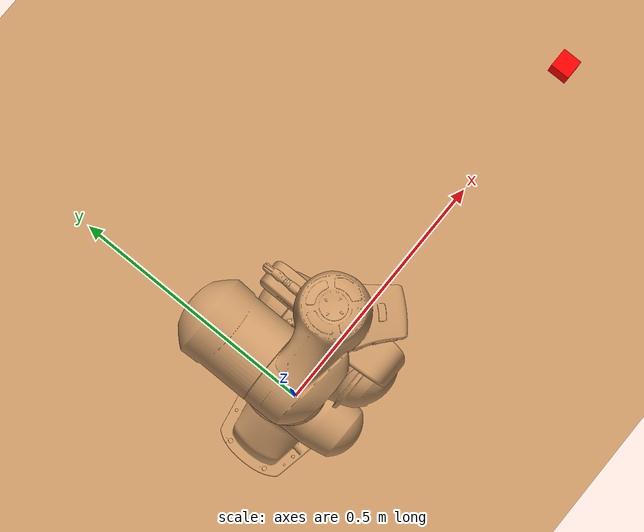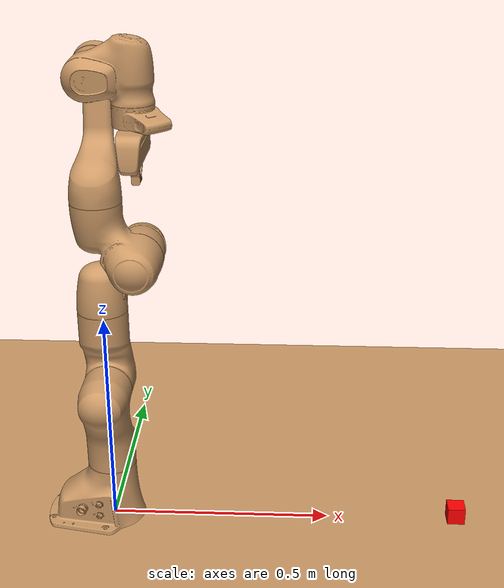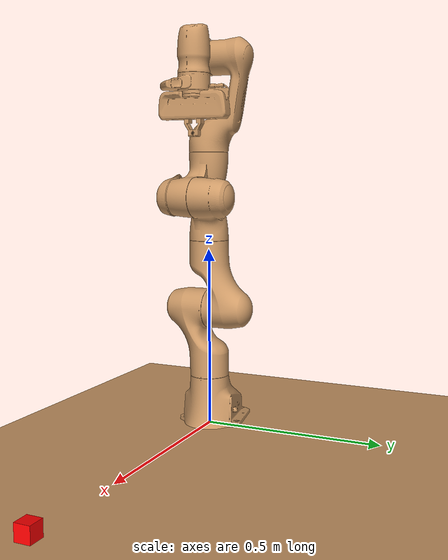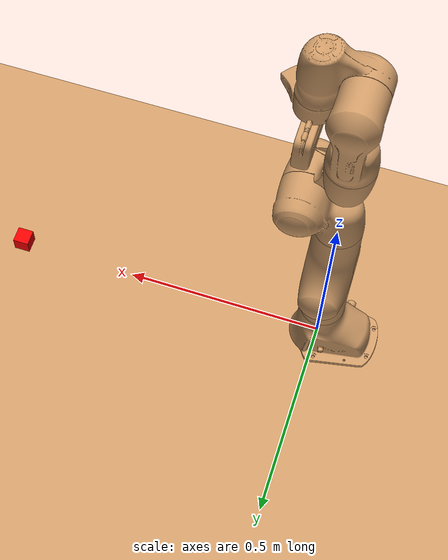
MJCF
<mujoco model='Franka'>
    <compiler inertiafromgeom='true' angle='radian' meshdir='meshes' fitaabb='true' />

    <default>
        <joint limited='true' damping='10' armature='0.001' axis='0 0 1' type='hinge'/>
        <geom contype='1' conaffinity='1' condim='1' rgba='0.8 0.6 .4 1'
        	margin='0.001' solref='.02 1' solimp='.8 .8 .01' material='geom'/>
        <motor ctrlrange='-1.0 1.0' ctrllimited='true' forcelimited='true' forcerange='-100 100'/>
        <position ctrlrange='-1.0 1.0' ctrllimited='true' forcelimited='true' forcerange='-100 100'/>

        <default class='collision'>
          <geom group='3' type='mesh' contype='1' conaffinity='0' />
        </default>
        <default class='visual'>
          <geom group='0' type='mesh' contype='0' conaffinity='0' material='robot' />
        </default>
    </default>

    <option timestep='0.002' iterations='50' tolerance='1e-10' solver='Newton' jacobian='dense' cone='elliptic'/>

    <size nstack='1000000'/>

    <visual>
        <map fogstart='3' fogend='5' force='0.1' znear='0.5'/>
        <quality shadowsize='2048' offsamples='8'/>
        <global offwidth='800' offheight='800'/>
    </visual>

    <asset>
        <texture type='skybox' builtin='gradient' width='128' height='128' rgb1='.4 .6 .8'
            rgb2='0 0 0'/>
        <texture name='texgeom' type='cube' builtin='flat' mark='cross' width='127' height='1278'
            rgb1='0.8 0.6 0.4' rgb2='0.8 0.6 0.4' markrgb='1 1 1' random='0.01'/>
        <texture name='texplane' type='2d' builtin='checker' rgb1='.2 .3 .4' rgb2='.1 0.15 0.2'
            width='512' height='512'/>

        <material name='MatPlane' reflectance='0.3' texture='texplane' texrepeat='1 1' texuniform='true'/>
        <material name='geom' texture='texgeom' texuniform='true'/>
        <material name='robot' rgba='0.8 0.8 0.8 1' specular='0.8' shininess='0.1'/>

        <mesh name='col_finger' file='collision/finger.stl'/>
        <mesh name='col_hand'   file='collision/hand.stl'/>
        <mesh name='col_link0'  file='collision/link0.stl'/>
        <mesh name='col_link1'  file='collision/link1.stl'/>
        <mesh name='col_link2'  file='collision/link2.stl'/>
        <mesh name='col_link3'  file='collision/link3.stl'/>
        <mesh name='col_link4'  file='collision/link4.stl'/>
        <mesh name='col_link5'  file='collision/link5.stl'/>
        <mesh name='col_link6'  file='collision/link6.stl'/>
        <mesh name='col_link7'  file='collision/link7.stl'/>
        <mesh name='viz_finger' file='visual/finger.stl' refquat='1 -1 0 0'/>
        <mesh name='viz_hand'   file='visual/hand.stl' refquat='1 -1 0 0'/>
        <mesh name='viz_link0'  file='visual/link0.stl' refquat='1 -1 0 0'/>
        <mesh name='viz_link1'  file='visual/link1.stl' refquat='1 -1 0 0'/>
        <mesh name='viz_link2'  file='visual/link2.stl' refquat='1 -1 0 0'/>
        <mesh name='viz_link3'  file='visual/link3.stl' refquat='1 -1 0 0'/>
        <mesh name='viz_link4'  file='visual/link4.stl' refquat='1 -1 0 0'/>
        <mesh name='viz_link5'  file='visual/link5.stl' refquat='1 -1 0 0'/>
        <mesh name='viz_link6'  file='visual/link6.stl' refquat='1 -1 0 0'/>
        <mesh name='viz_link7'  file='visual/link7.stl' refquat='1 -1 0 0'/>
    </asset>

    <worldbody>
      <geom name='floor' pos='0 0 0' size='5 5 .125' type='plane' material='MatPlane' condim='3'/>

      <light mode='targetbodycom' target='link0' directional='false' diffuse='.8 .8 .8' specular='0.3 0.3 0.3' pos='0 0 4.0' dir='0 0 -1'/>

      <body name='link0' pos='0 0 0'>
        <geom name='link0' mesh='col_link0' class='collision'/>
        <geom name='vlink0' mesh='viz_link0' class='visual'/>
        <body name='link1' pos='0 0 0.333'>
          <joint name='joint1' pos='0 0 -0.333' range='-2.8973 2.8973' />
          <geom name='link1' mesh='col_link1' class='collision'/>
          <geom name='vlink1' mesh='viz_link1' class='visual'/>
          <body name='link2' pos='0 0 0' euler='-1.5707 0 0' >
            <joint name='joint2' pos='0 0 0' range='-1.7628 1.7628' />
            <geom name='link2' mesh='col_link2' class='collision'/>
            <geom name='vlink2' mesh='viz_link2' class='visual'/>
            <body name='link3' pos='0 -0.316 0' euler='1.5707 0 0' >
              <joint name='joint3' pos='0 0 -0.12' range='-2.8973 2.8973' />
              <geom name='link3' mesh='col_link3' class='collision'/>
              <geom name='vlink3' mesh='viz_link3' class='visual'/>
              <body name='link4' pos='0.0825 0 0' euler='1.5707 0 0' >
                <joint name='joint4' pos='0 0 0' range='-3.0718 0.0698' />
                <geom name='link4' mesh='col_link4' class='collision'/>
                <geom name='vlink4' mesh='viz_link4' class='visual'/>
                <body name='link5' pos='-0.0825 0.384 0' euler='-1.5707 0 0' >
                  <joint name='joint5' pos='0 0 -0.26' range='-2.8973 2.9873' />
                  <geom name='link5' mesh='col_link5' class='collision'/>
                  <geom name='vlink5' mesh='viz_link5' class='visual'/>
                  <body name='link6' pos='0 0 0' euler='1.5707 0 0' >
                    <joint name='joint6' pos='0 0 0' range='-0.0175 3.7525' />
                    <geom name='link6' mesh='col_link6' class='collision'/>
                    <geom name='vlink6' mesh='viz_link6' class='visual'/>
                    <body name='link7' pos='0.088 0 0' euler='1.5707 0 0' >
                      <joint name='joint7' pos='0 0 0' range='-2.8973 2.9873' />
                      <geom name='link7' mesh='col_link7' class='collision'/>
                      <geom name='vlink7' mesh='viz_link7' class='visual'/>

                      <!-- Hand Start-->
                      <body name='hand' pos='0 0 0.107' euler='0 0 0' >
                        <geom name='hand' mesh='col_hand' class='collision'/>
                        <geom name='vhand' mesh='viz_hand' class='visual'/>
                        <site name='hand' pos='0 0 0.103' type='sphere' size='0.01' rgba='0.1 0.1 0.1 0.5' />
                        <body name='finger1' pos='0 0 0.0584' euler='0 0 0' >
                          <joint name='finger1' type='slide' axis='0 1 0' pos='0 0 0' range='0.0 0.04' />
                          <geom name='finger1' mesh='col_finger' class='collision'/>
                          <geom name='vfinger1' mesh='viz_finger' class='visual'/>
                        </body>
                        <body name='finger2' pos='0 0 0.0584' euler='0 0 -3.1415' >
                          <joint name='finger2' type='slide' axis='0 -1 0' pos='0 0 0' range='-0.04 0' />
                          <geom name='finger2' mesh='col_finger' class='collision'/>
                          <geom name='vfinger2' mesh='viz_finger' class='visual'/>
                        </body>
                      </body>
                      <!-- Hand End -->

                    </body>
                  </body>
                </body>
              </body>
            </body>
          </body>
        </body>
      </body>
      <body name='box_body' pos='0.8 0 0.02'>
        <freejoint/>
        <geom group='1' size='0.02 0.02 0.02' type='box' name='mybox' rgba='1 0 0 1' mass='0.2' contype='1' conaffinity='1' />
      </body>
    </worldbody>

    <equality>
      <!-- Links default hand grippers together -->
      <joint name='finger2' joint1='finger1' joint2='finger2' polycoef='0 -1 0 0 0' />
    </equality>

    <actuator>
      <position name='joint1' kp='107' joint='joint1' ctrllimited='true' ctrlrange='-2.8 2.8'/>
      <position name='joint2' kp='107' joint='joint2' ctrllimited='true' ctrlrange='-1.7 1.7'/>
      <position name='joint3' kp='107' joint='joint3' ctrllimited='true' ctrlrange='-2.8 2.8'/>
      <position name='joint4' kp='107' joint='joint4' ctrllimited='true' ctrlrange='-3 0'/>
      <position name='joint5' kp='51' joint='joint5'  ctrllimited='true' ctrlrange='-2.8 2.9'/>
      <position name='joint6' kp='51' joint='joint6'  ctrllimited='true' ctrlrange='-0 3.7'/>
      <position name='joint7' kp='51' joint='joint7'  ctrllimited='true' ctrlrange='-2.8 2.9'/>
      <position name='finger' kp='20' joint='finger1' ctrllimited='true' ctrlrange='-0.04 0.04'/>

      <velocity name='vjoint1' kv='18' joint='joint1'  ctrllimited='true' ctrlrange='-0.001 0.001'/>
      <velocity name='vjoint2' kv='18' joint='joint2'  ctrllimited='true' ctrlrange='-0.001 0.001'/>
      <velocity name='vjoint3' kv='18' joint='joint3'  ctrllimited='true' ctrlrange='-0.001 0.001'/>
      <velocity name='vjoint4' kv='18' joint='joint4'  ctrllimited='true' ctrlrange='-0.001 0.001'/>
      <velocity name='vjoint5' kv='15' joint='joint5'  ctrllimited='true' ctrlrange='-0.001 0.001'/>
      <velocity name='vjoint6' kv='15' joint='joint6'  ctrllimited='true' ctrlrange='-0.001 0.001'/>
      <velocity name='vjoint7' kv='15' joint='joint7'  ctrllimited='true' ctrlrange='-0.001 0.001'/>
      <velocity name='vfinger' kv='2' joint='finger1' ctrllimited='true' ctrlrange='-0.001 0.001'/>

    </actuator>

    <keyframe>
      <key qpos='0 0.3 0 -1.2 0 1.6 0.0 0.04 -0.04      0.8 0 0.02 1 0 0 0'/>
    </keyframe>
  </mujoco>
